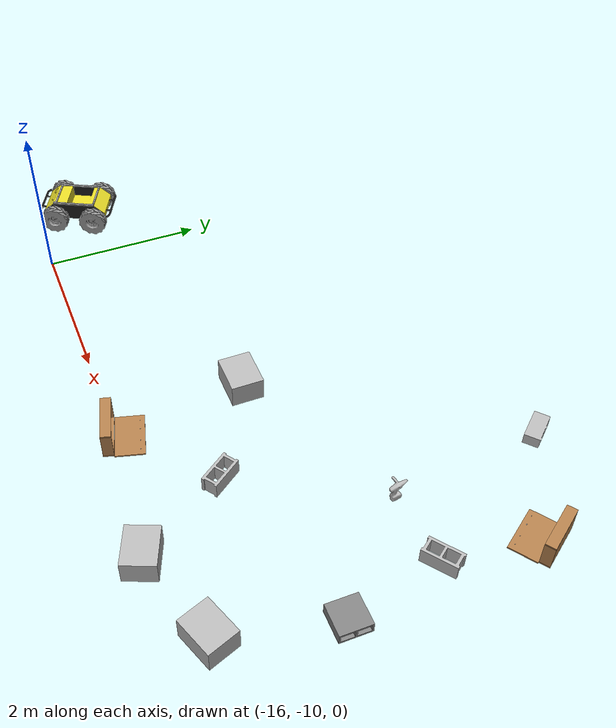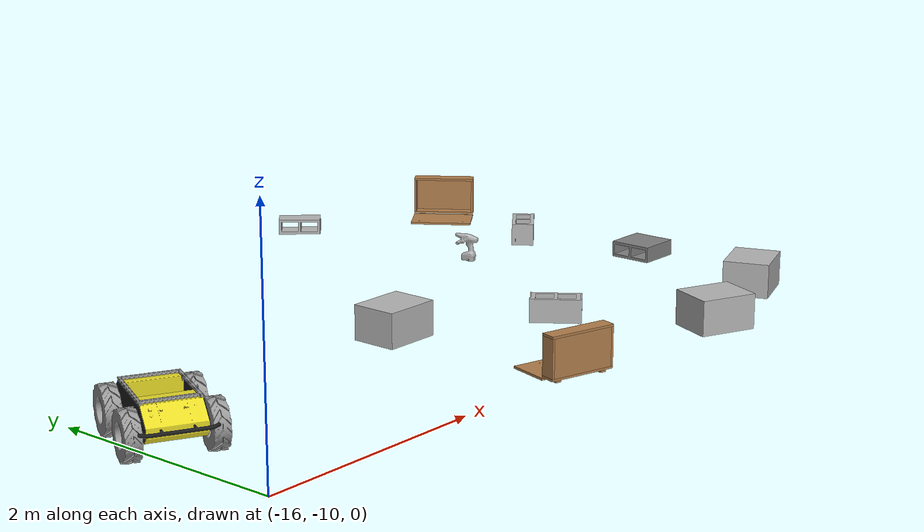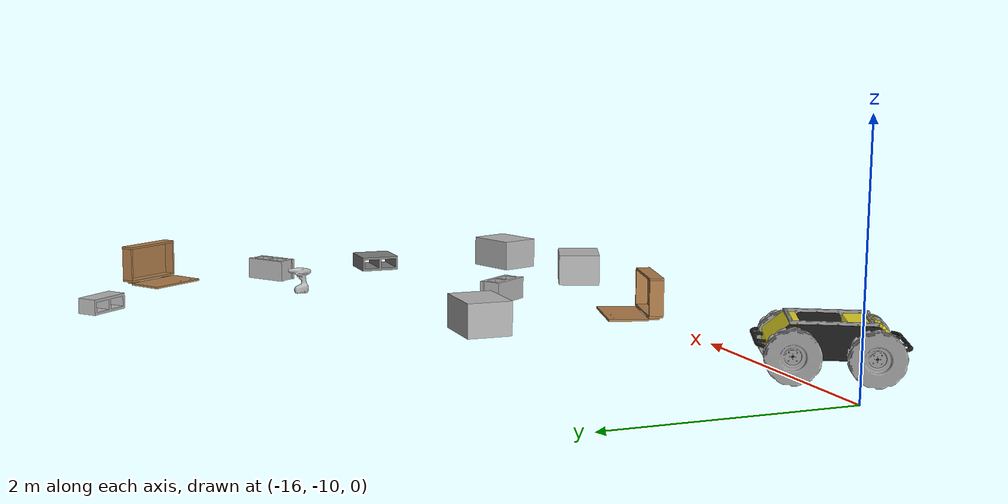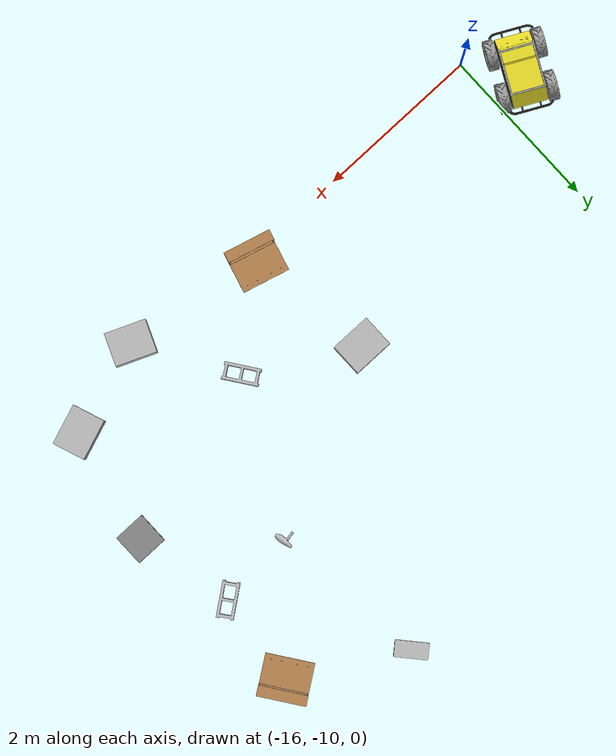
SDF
<?xml version='1.0'?>
<sdf version='1.6'>
  <model name='model'>
    <model name='cardboard_box'>
      <pose frame=''>-12.9488 -8.37571 0.15 0 -0 0</pose>
      <link name='link'>
        <inertial>
          <mass>2</mass>
          <inertia>
            <ixx>0.0416667</ixx>
            <ixy>0</ixy>
            <ixz>0</ixz>
            <iyy>0.0566667</iyy>
            <iyz>0</iyz>
            <izz>0.0683333</izz>
          </inertia>
        </inertial>
        <collision name='collision'>
          <geometry>
            <box>
              <size>0.5 0.4 0.3</size>
            </box>
          </geometry>
          <surface>
            <friction>
              <ode>
                <mu>1</mu>
                <mu2>1</mu2>
              </ode>
            </friction>
            <contact>
              <ode>
                <kp>1e+07</kp>
                <kd>1</kd>
                <min_depth>0.001</min_depth>
                <max_vel>0.1</max_vel>
              </ode>
            </contact>
          </surface>
        </collision>
        <visual name='visual'>
          <pose frame=''>0 0 -0.15 0 -0 0</pose>
          <geometry>
            <mesh>
              <uri>model://cardboard_box/meshes/cardboard_box.dae</uri>
              <scale>1.25932 1.00745 0.755591</scale>
            </mesh>
          </geometry>
        </visual>
      </link>
    </model>
    <model name='cardboard_box_0'>
      <pose frame=''>-9.89481 -9.83756 0.15 0 -0 0.347901</pose>
      <link name='link'>
        <inertial>
          <mass>2</mass>
          <inertia>
            <ixx>0.0416667</ixx>
            <ixy>0</ixy>
            <ixz>0</ixz>
            <iyy>0.0566667</iyy>
            <iyz>0</iyz>
            <izz>0.0683333</izz>
          </inertia>
        </inertial>
        <collision name='collision'>
          <geometry>
            <box>
              <size>0.5 0.4 0.3</size>
            </box>
          </geometry>
          <surface>
            <friction>
              <ode>
                <mu>1</mu>
                <mu2>1</mu2>
              </ode>
            </friction>
            <contact>
              <ode>
                <kp>1e+07</kp>
                <kd>1</kd>
                <min_depth>0.001</min_depth>
                <max_vel>0.1</max_vel>
              </ode>
            </contact>
          </surface>
        </collision>
        <visual name='visual'>
          <pose frame=''>0 0 -0.15 0 -0 0</pose>
          <geometry>
            <mesh>
              <uri>model://cardboard_box/meshes/cardboard_box.dae</uri>
              <scale>1.25932 1.00745 0.755591</scale>
            </mesh>
          </geometry>
        </visual>
      </link>
    </model>
    <model name='cardboard_box_1'>
      <pose frame=''>-11.0218 -10.1911 0.15 0 0 -0.396044</pose>
      <link name='link'>
        <inertial>
          <mass>2</mass>
          <inertia>
            <ixx>0.0416667</ixx>
            <ixy>0</ixy>
            <ixz>0</ixz>
            <iyy>0.0566667</iyy>
            <iyz>0</iyz>
            <izz>0.0683333</izz>
          </inertia>
        </inertial>
        <collision name='collision'>
          <geometry>
            <box>
              <size>0.5 0.4 0.3</size>
            </box>
          </geometry>
          <surface>
            <friction>
              <ode>
                <mu>1</mu>
                <mu2>1</mu2>
              </ode>
            </friction>
            <contact>
              <ode>
                <kp>1e+07</kp>
                <kd>1</kd>
                <min_depth>0.001</min_depth>
                <max_vel>0.1</max_vel>
              </ode>
            </contact>
          </surface>
        </collision>
        <visual name='visual'>
          <pose frame=''>0 0 -0.15 0 -0 0</pose>
          <geometry>
            <mesh>
              <uri>model://cardboard_box/meshes/cardboard_box.dae</uri>
              <scale>1.25932 1.00745 0.755591</scale>
            </mesh>
          </geometry>
        </visual>
      </link>
    </model>
    <model name='cinder_block'>
      <link name='link'>
        <inertial>
          <pose frame=''>0 0 0.1016 0 -0 0</pose>
          <mass>5</mass>
          <inertia>
            <ixx>0.028705</ixx>
            <ixy>0</ixy>
            <iyy>0.073708</iyy>
            <ixz>0</ixz>
            <iyz>0</iyz>
            <izz>0.06908</izz>
          </inertia>
        </inertial>
        <visual name='visual'>
          <geometry>
            <mesh>
              <uri>model://cinder_block/meshes/cinder_block.dae</uri>
            </mesh>
          </geometry>
        </visual>
        <collision name='left'>
          <pose frame=''>0 -0.08465 0.1016 0 -0 0</pose>
          <geometry>
            <box>
              <size>0.43495 0.0339 0.2032</size>
            </box>
          </geometry>
          <surface>
            <contact>
              <ode>
                <max_vel>0.1</max_vel>
                <min_depth>0.001</min_depth>
              </ode>
            </contact>
            <friction>
              <ode>
                <mu>1</mu>
                <mu2>1</mu2>
              </ode>
            </friction>
          </surface>
        </collision>
        <collision name='right'>
          <pose frame=''>0 0.08465 0.1016 0 -0 0</pose>
          <geometry>
            <box>
              <size>0.43495 0.0339 0.2032</size>
            </box>
          </geometry>
          <surface>
            <contact>
              <ode>
                <max_vel>0.1</max_vel>
                <min_depth>0.001</min_depth>
              </ode>
            </contact>
            <friction>
              <ode>
                <mu>1</mu>
                <mu2>1</mu2>
              </ode>
            </friction>
          </surface>
        </collision>
        <collision name='front'>
          <pose frame=''>0.18625 0 0.1016 0 -0 0</pose>
          <geometry>
            <box>
              <size>0.0339 0.1354 0.203</size>
            </box>
          </geometry>
          <surface>
            <contact>
              <ode>
                <max_vel>0.1</max_vel>
                <min_depth>0.001</min_depth>
              </ode>
            </contact>
            <friction>
              <ode>
                <mu>1</mu>
                <mu2>1</mu2>
              </ode>
            </friction>
          </surface>
        </collision>
        <collision name='middle'>
          <pose frame=''>0 0 0.1016 0 -0 0</pose>
          <geometry>
            <box>
              <size>0.0339 0.1354 0.203</size>
            </box>
          </geometry>
          <surface>
            <contact>
              <ode>
                <max_vel>0.1</max_vel>
                <min_depth>0.001</min_depth>
              </ode>
            </contact>
            <friction>
              <ode>
                <mu>1</mu>
                <mu2>1</mu2>
              </ode>
            </friction>
          </surface>
        </collision>
        <collision name='back'>
          <pose frame=''>-0.18625 0 0.1016 0 -0 0</pose>
          <geometry>
            <box>
              <size>0.0339 0.1354 0.203</size>
            </box>
          </geometry>
          <surface>
            <contact>
              <ode>
                <max_vel>0.1</max_vel>
                <min_depth>0.001</min_depth>
              </ode>
            </contact>
            <friction>
              <ode>
                <mu>1</mu>
                <mu2>1</mu2>
              </ode>
            </friction>
          </surface>
        </collision>
      </link>
      <pose frame=''>-11.7145 -9.07547 0 0 0 -0.951879</pose>
    </model>
    <model name='cinder_block_0'>
      <link name='link'>
        <inertial>
          <pose frame=''>0 0 0.1016 0 -0 0</pose>
          <mass>5</mass>
          <inertia>
            <ixx>0.028705</ixx>
            <ixy>0</ixy>
            <iyy>0.073708</iyy>
            <ixz>0</ixz>
            <iyz>0</iyz>
            <izz>0.06908</izz>
          </inertia>
        </inertial>
        <visual name='visual'>
          <geometry>
            <mesh>
              <uri>model://cinder_block/meshes/cinder_block.dae</uri>
            </mesh>
          </geometry>
        </visual>
        <collision name='left'>
          <pose frame=''>0 -0.08465 0.1016 0 -0 0</pose>
          <geometry>
            <box>
              <size>0.43495 0.0339 0.2032</size>
            </box>
          </geometry>
          <surface>
            <contact>
              <ode>
                <max_vel>0.1</max_vel>
                <min_depth>0.001</min_depth>
              </ode>
            </contact>
            <friction>
              <ode>
                <mu>1</mu>
                <mu2>1</mu2>
              </ode>
            </friction>
          </surface>
        </collision>
        <collision name='right'>
          <pose frame=''>0 0.08465 0.1016 0 -0 0</pose>
          <geometry>
            <box>
              <size>0.43495 0.0339 0.2032</size>
            </box>
          </geometry>
          <surface>
            <contact>
              <ode>
                <max_vel>0.1</max_vel>
                <min_depth>0.001</min_depth>
              </ode>
            </contact>
            <friction>
              <ode>
                <mu>1</mu>
                <mu2>1</mu2>
              </ode>
            </friction>
          </surface>
        </collision>
        <collision name='front'>
          <pose frame=''>0.18625 0 0.1016 0 -0 0</pose>
          <geometry>
            <box>
              <size>0.0339 0.1354 0.203</size>
            </box>
          </geometry>
          <surface>
            <contact>
              <ode>
                <max_vel>0.1</max_vel>
                <min_depth>0.001</min_depth>
              </ode>
            </contact>
            <friction>
              <ode>
                <mu>1</mu>
                <mu2>1</mu2>
              </ode>
            </friction>
          </surface>
        </collision>
        <collision name='middle'>
          <pose frame=''>0 0 0.1016 0 -0 0</pose>
          <geometry>
            <box>
              <size>0.0339 0.1354 0.203</size>
            </box>
          </geometry>
          <surface>
            <contact>
              <ode>
                <max_vel>0.1</max_vel>
                <min_depth>0.001</min_depth>
              </ode>
            </contact>
            <friction>
              <ode>
                <mu>1</mu>
                <mu2>1</mu2>
              </ode>
            </friction>
          </surface>
        </collision>
        <collision name='back'>
          <pose frame=''>-0.18625 0 0.1016 0 -0 0</pose>
          <geometry>
            <box>
              <size>0.0339 0.1354 0.203</size>
            </box>
          </geometry>
          <surface>
            <contact>
              <ode>
                <max_vel>0.1</max_vel>
                <min_depth>0.001</min_depth>
              </ode>
            </contact>
            <friction>
              <ode>
                <mu>1</mu>
                <mu2>1</mu2>
              </ode>
            </friction>
          </surface>
        </collision>
      </link>
      <pose frame=''>-9.8513 -7.27167 0 0 -0 0.643801</pose>
    </model>
    <model name='cinder_block_2'>
      <link name='link'>
        <inertial>
          <pose frame=''>0 0 0.071438 0 -0 0</pose>
          <mass>5</mass>
          <inertia>
            <ixx>0.06908</ixx>
            <ixy>0</ixy>
            <iyy>0.028705</iyy>
            <ixz>0</ixz>
            <iyz>0</iyz>
            <izz>0.073708</izz>
          </inertia>
        </inertial>
        <visual name='visual'>
          <geometry>
            <mesh>
              <uri>model://cinder_block_2/meshes/cinder_block.dae</uri>
            </mesh>
          </geometry>
        </visual>
        <collision name='top'>
          <pose frame=''>0 0 0.130175 0 -0 0</pose>
          <geometry>
            <box>
              <size>0.19368 0.396875 0.0254</size>
            </box>
          </geometry>
          <surface>
            <contact>
              <ode>
                <max_vel>0.1</max_vel>
                <min_depth>0.001</min_depth>
              </ode>
            </contact>
            <friction>
              <ode>
                <mu>1</mu>
                <mu2>1</mu2>
              </ode>
            </friction>
          </surface>
        </collision>
        <collision name='bottom'>
          <pose frame=''>0 0 0.0127 0 -0 0</pose>
          <geometry>
            <box>
              <size>0.19368 0.396875 0.0254</size>
            </box>
          </geometry>
          <surface>
            <contact>
              <ode>
                <max_vel>0.1</max_vel>
                <min_depth>0.001</min_depth>
              </ode>
            </contact>
            <friction>
              <ode>
                <mu>1</mu>
                <mu2>1</mu2>
              </ode>
            </friction>
          </surface>
        </collision>
        <collision name='left'>
          <pose frame=''>0 -0.185738 0.071438 0 -0 0</pose>
          <geometry>
            <box>
              <size>0.19368 0.0254 0.092075</size>
            </box>
          </geometry>
          <surface>
            <contact>
              <ode>
                <max_vel>0.1</max_vel>
                <min_depth>0.001</min_depth>
              </ode>
            </contact>
            <friction>
              <ode>
                <mu>1</mu>
                <mu2>1</mu2>
              </ode>
            </friction>
          </surface>
        </collision>
        <collision name='right'>
          <pose frame=''>0 0.185738 0.071438 0 -0 0</pose>
          <geometry>
            <box>
              <size>0.19368 0.0254 0.092075</size>
            </box>
          </geometry>
          <surface>
            <contact>
              <ode>
                <max_vel>0.1</max_vel>
                <min_depth>0.001</min_depth>
              </ode>
            </contact>
            <friction>
              <ode>
                <mu>1</mu>
                <mu2>1</mu2>
              </ode>
            </friction>
          </surface>
        </collision>
        <collision name='middle'>
          <pose frame=''>0 0 0.071438 0 -0 0</pose>
          <geometry>
            <box>
              <size>0.19368 0.0254 0.092075</size>
            </box>
          </geometry>
          <surface>
            <contact>
              <ode>
                <max_vel>0.1</max_vel>
                <min_depth>0.001</min_depth>
              </ode>
            </contact>
            <friction>
              <ode>
                <mu>1</mu>
                <mu2>1</mu2>
              </ode>
            </friction>
          </surface>
        </collision>
      </link>
      <pose frame=''>-11.0101 -5.432 0 0 -0 0.722831</pose>
    </model>
    <model name='cinder_block_wide'>
      <link name='link'>
        <inertial>
          <pose frame=''>0 0 0.071438 0 -0 0</pose>
          <mass>5</mass>
          <inertia>
            <ixx>0.0681466</ixx>
            <ixy>0</ixy>
            <iyy>0.0681466</iyy>
            <ixz>0</ixz>
            <iyz>0</iyz>
            <izz>0.124808</izz>
          </inertia>
        </inertial>
        <visual name='visual'>
          <geometry>
            <mesh>
              <uri>model://cinder_block_wide/meshes/cinder_block_wide.dae</uri>
            </mesh>
          </geometry>
        </visual>
        <collision name='top'>
          <pose frame=''>0 0 0.130175 0 -0 0</pose>
          <geometry>
            <box>
              <size>0.387354 0.387354 0.0254</size>
            </box>
          </geometry>
          <surface>
            <contact>
              <ode>
                <max_vel>0.1</max_vel>
                <min_depth>0.001</min_depth>
              </ode>
            </contact>
            <friction>
              <ode>
                <mu>1</mu>
                <mu2>1</mu2>
              </ode>
            </friction>
          </surface>
        </collision>
        <collision name='bottom'>
          <pose frame=''>0 0 0.0127 0 -0 0</pose>
          <geometry>
            <box>
              <size>0.387354 0.387354 0.0254</size>
            </box>
          </geometry>
          <surface>
            <contact>
              <ode>
                <max_vel>0.1</max_vel>
                <min_depth>0.001</min_depth>
              </ode>
            </contact>
            <friction>
              <ode>
                <mu>1</mu>
                <mu2>1</mu2>
              </ode>
            </friction>
          </surface>
        </collision>
        <collision name='left'>
          <pose frame=''>0 -0.183355 0.071438 0 -0 0</pose>
          <geometry>
            <box>
              <size>0.387354 0.020643 0.092075</size>
            </box>
          </geometry>
          <surface>
            <contact>
              <ode>
                <max_vel>0.1</max_vel>
                <min_depth>0.001</min_depth>
              </ode>
            </contact>
            <friction>
              <ode>
                <mu>1</mu>
                <mu2>1</mu2>
              </ode>
            </friction>
          </surface>
        </collision>
        <collision name='right'>
          <pose frame=''>0 0.183355 0.071438 0 -0 0</pose>
          <geometry>
            <box>
              <size>0.387354 0.020643 0.092075</size>
            </box>
          </geometry>
          <surface>
            <contact>
              <ode>
                <max_vel>0.1</max_vel>
                <min_depth>0.001</min_depth>
              </ode>
            </contact>
            <friction>
              <ode>
                <mu>1</mu>
                <mu2>1</mu2>
              </ode>
            </friction>
          </surface>
        </collision>
        <collision name='middle'>
          <pose frame=''>0 0 0.071438 0 -0 0</pose>
          <geometry>
            <box>
              <size>0.387354 0.0254 0.092075</size>
            </box>
          </geometry>
          <surface>
            <contact>
              <ode>
                <max_vel>0.1</max_vel>
                <min_depth>0.001</min_depth>
              </ode>
            </contact>
            <friction>
              <ode>
                <mu>1</mu>
                <mu2>1</mu2>
              </ode>
            </friction>
          </surface>
        </collision>
      </link>
      <pose frame=''>-9.58358 -8.46517 0 0 -0 0</pose>
    </model>
    <model name='drill'>
      <link name='link'>
        <inertial>
          <pose frame=''>-0.00637 -0.008 0.13254 0 -0 0</pose>
          <inertia>
            <ixx>0.0133113</ixx>
            <ixy>-0.00030365</ixy>
            <ixz>-0.00034148</ixz>
            <iyy>0.0115766</iyy>
            <iyz>0.00088073</iyz>
            <izz>0.00378028</izz>
          </inertia>
          <mass>1.50252</mass>
        </inertial>
        <collision name='collision'>
          <pose frame=''>0 0 -0.09 0 -0 0</pose>
          <geometry>
            <mesh>
              <uri>model://cordless_drill/meshes/cordless_drill.stl</uri>
            </mesh>
          </geometry>
          <surface>
            <contact>
              <ode>
                <max_vel>0.1</max_vel>
                <min_depth>0.001</min_depth>
              </ode>
            </contact>
          </surface>
        </collision>
        <visual name='visual'>
          <pose frame=''>0 0 -0.09 0 -0 0</pose>
          <geometry>
            <mesh>
              <uri>model://cordless_drill/meshes/cordless_drill.dae</uri>
            </mesh>
          </geometry>
        </visual>
      </link>
      <pose frame=''>-10.774 -7.34808 0 0 -0 0.159102</pose>
    </model>
    <model name='husky'>
      <pose frame=''>-16.3976 -9.44894 0.5 0 -0 1.09834</pose>
      <link name='base_link'>
        <collision name='collision'>
          <pose frame=''>0 0 0.1 0 -0 0</pose>
          <geometry>
            <box>
              <size>1.0074 0.5709 0.2675</size>
            </box>
          </geometry>
        </collision>
        <inertial>
          <mass>33.855</mass>
          <pose frame=''>-0.085613 -0.00084 0.238145 0 -0 0</pose>
          <inertia>
            <ixx>2.2343</ixx>
            <ixy>-0.023642</ixy>
            <ixz>0.275174</ixz>
            <iyy>3.42518</iyy>
            <iyz>0.00239624</iyz>
            <izz>2.1241</izz>
          </inertia>
        </inertial>
        <visual name='base'>
          <pose frame=''>0 0 0 0 -0 0</pose>
          <geometry>
            <mesh>
              <uri>model://husky/meshes/base_link.stl</uri>
            </mesh>
          </geometry>
          <material>
            <script>
              <name>Gazebo/FlatBlack</name>
              <uri>__default__</uri>
            </script>
          </material>
        </visual>
        <visual name='top_plate'>
          <pose frame=''>0 0 0 0 -0 0</pose>
          <geometry>
            <mesh>
              <uri>model://husky/meshes/top_plate.stl</uri>
            </mesh>
          </geometry>
          <material>
            <script>
              <name>Gazebo/Yellow</name>
              <uri>__default__</uri>
            </script>
          </material>
        </visual>
        <visual name='front_bumper'>
          <pose frame=''>0.47 0 0.091 0 -0 0</pose>
          <geometry>
            <mesh>
              <uri>model://husky/meshes/bumper.stl</uri>
            </mesh>
          </geometry>
          <material>
            <script>
              <name>Gazebo/FlatBlack</name>
              <uri>__default__</uri>
            </script>
          </material>
        </visual>
        <visual name='rear_bumper'>
          <pose frame=''>-0.47 0 0.091 0 -0 3.141</pose>
          <geometry>
            <mesh>
              <uri>model://husky/meshes/bumper.stl</uri>
            </mesh>
          </geometry>
          <material>
            <script>
              <name>Gazebo/FlatBlack</name>
              <uri>__default__</uri>
            </script>
          </material>
        </visual>
        <visual name='user_rail'>
          <pose frame=''>0.272 0 0.245 0 -0 0</pose>
          <geometry>
            <mesh>
              <uri>model://husky/meshes/user_rail.stl</uri>
            </mesh>
          </geometry>
          <material>
            <script>
              <name>Gazebo/Grey</name>
              <uri>__default__</uri>
            </script>
          </material>
        </visual>
      </link>
      <link name='back_left_wheel'>
        <pose frame=''>-0.256 0.285475 0.035 0 -0 0</pose>
        <inertial>
          <mass>2.6357</mass>
          <pose frame=''>0 0 0 0 -0 0</pose>
          <inertia>
            <ixx>0.0246688</ixx>
            <ixy>0</ixy>
            <ixz>0</ixz>
            <iyy>0.0246688</iyy>
            <iyz>0</iyz>
            <izz>0.0441058</izz>
          </inertia>
        </inertial>
        <collision name='back_left_wheel_collision'>
          <pose frame=''>0 0 0 -1.5707 0 0</pose>
          <geometry>
            <cylinder>
              <radius>0.17775</radius>
              <length>0.1143</length>
            </cylinder>
          </geometry>
          <surface>
            <friction>
              <ode>
                <mu>100000</mu>
                <mu2>100000</mu2>
                <slip1>0</slip1>
                <slip2>0</slip2>
              </ode>
            </friction>
          </surface>
        </collision>
        <visual name='back_left_wheel'>
          <pose frame=''>0 0 0 -3.14159 0 0</pose>
          <geometry>
            <mesh>
              <uri>model://husky/meshes/wheel.stl</uri>
            </mesh>
          </geometry>
          <material>
            <script>
              <name>Gazebo/Grey</name>
              <uri>__default__</uri>
            </script>
          </material>
        </visual>
      </link>
      <joint name='back_left_joint' type='revolute'>
        <parent>base_link</parent>
        <child>back_left_wheel</child>
        <axis>
          <xyz>0 1 0</xyz>
          <use_parent_model_frame>1</use_parent_model_frame>
          <limit>
            <lower>-1e+16</lower>
            <upper>1e+16</upper>
          </limit>
        </axis>
        <physics>
          <ode>
            <limit>
              <cfm>0</cfm>
              <erp>0.9</erp>
            </limit>
          </ode>
        </physics>
      </joint>
      <link name='back_right_wheel'>
        <pose frame=''>-0.256 -0.285475 0.035 0 -0 0</pose>
        <inertial>
          <mass>2.6357</mass>
          <pose frame=''>0 0 0 0 -0 0</pose>
          <inertia>
            <ixx>0.0246688</ixx>
            <ixy>0</ixy>
            <ixz>0</ixz>
            <iyy>0.0246688</iyy>
            <iyz>0</iyz>
            <izz>0.0441058</izz>
          </inertia>
        </inertial>
        <collision name='back_right_wheel_collision'>
          <pose frame=''>0 0 0 -1.5707 0 0</pose>
          <geometry>
            <cylinder>
              <radius>0.17775</radius>
              <length>0.1143</length>
            </cylinder>
          </geometry>
          <surface>
            <friction>
              <ode>
                <mu>100000</mu>
                <mu2>100000</mu2>
                <slip1>0</slip1>
                <slip2>0</slip2>
              </ode>
            </friction>
          </surface>
        </collision>
        <visual name='back_right_wheel'>
          <pose frame=''>0 0 0 -3.14159 0 0</pose>
          <geometry>
            <mesh>
              <uri>model://husky/meshes/wheel.stl</uri>
            </mesh>
          </geometry>
          <material>
            <script>
              <name>Gazebo/Grey</name>
              <uri>__default__</uri>
            </script>
          </material>
        </visual>
      </link>
      <joint name='back_right_joint' type='revolute'>
        <parent>base_link</parent>
        <child>back_right_wheel</child>
        <axis>
          <xyz>0 1 0</xyz>
          <use_parent_model_frame>1</use_parent_model_frame>
          <limit>
            <lower>-1e+16</lower>
            <upper>1e+16</upper>
          </limit>
        </axis>
        <physics>
          <ode>
            <limit>
              <cfm>0</cfm>
              <erp>0.9</erp>
            </limit>
          </ode>
        </physics>
      </joint>
      <link name='front_left_wheel'>
        <pose frame=''>0.256 0.285475 0.035 0 -0 0</pose>
        <inertial>
          <mass>2.6357</mass>
          <pose frame=''>0 0 0 0 -0 0</pose>
          <inertia>
            <ixx>0.0246688</ixx>
            <ixy>0</ixy>
            <ixz>0</ixz>
            <iyy>0.0246688</iyy>
            <iyz>0</iyz>
            <izz>0.0441058</izz>
          </inertia>
        </inertial>
        <collision name='front_left_wheel_collision'>
          <pose frame=''>0 0 0 -1.5707 0 0</pose>
          <geometry>
            <cylinder>
              <radius>0.17775</radius>
              <length>0.1143</length>
            </cylinder>
          </geometry>
          <surface>
            <friction>
              <ode>
                <mu>100000</mu>
                <mu2>100000</mu2>
                <slip1>0</slip1>
                <slip2>0</slip2>
              </ode>
            </friction>
          </surface>
        </collision>
        <visual name='front_left_wheel'>
          <pose frame=''>0 0 0 -3.14159 0 0</pose>
          <geometry>
            <mesh>
              <uri>model://husky/meshes/wheel.stl</uri>
            </mesh>
          </geometry>
          <material>
            <script>
              <name>Gazebo/Grey</name>
              <uri>__default__</uri>
            </script>
          </material>
        </visual>
      </link>
      <joint name='front_left_joint' type='revolute'>
        <parent>base_link</parent>
        <child>front_left_wheel</child>
        <axis>
          <xyz>0 1 0</xyz>
          <use_parent_model_frame>1</use_parent_model_frame>
          <limit>
            <lower>-1e+16</lower>
            <upper>1e+16</upper>
          </limit>
        </axis>
        <physics>
          <ode>
            <limit>
              <cfm>0</cfm>
              <erp>0.9</erp>
            </limit>
          </ode>
        </physics>
      </joint>
      <link name='front_right_wheel'>
        <pose frame=''>0.256 -0.285475 0.035 0 -0 0</pose>
        <inertial>
          <mass>2.6357</mass>
          <pose frame=''>0 0 0 0 -0 0</pose>
          <inertia>
            <ixx>0.0246688</ixx>
            <ixy>0</ixy>
            <ixz>0</ixz>
            <iyy>0.0246688</iyy>
            <iyz>0</iyz>
            <izz>0.0441058</izz>
          </inertia>
        </inertial>
        <collision name='front_right_wheel_collision'>
          <pose frame=''>0 0 0 -1.5707 0 0</pose>
          <geometry>
            <cylinder>
              <radius>0.17775</radius>
              <length>0.1143</length>
            </cylinder>
          </geometry>
          <surface>
            <friction>
              <ode>
                <mu>100000</mu>
                <mu2>100000</mu2>
                <slip1>0</slip1>
                <slip2>0</slip2>
              </ode>
            </friction>
          </surface>
        </collision>
        <visual name='front_right_wheel'>
          <pose frame=''>0 0 0 -3.14159 0 0</pose>
          <geometry>
            <mesh>
              <uri>model://husky/meshes/wheel.stl</uri>
            </mesh>
          </geometry>
          <material>
            <script>
              <name>Gazebo/Grey</name>
              <uri>__default__</uri>
            </script>
          </material>
        </visual>
      </link>
      <joint name='front_right_joint' type='revolute'>
        <parent>base_link</parent>
        <child>front_right_wheel</child>
        <axis>
          <xyz>0 1 0</xyz>
          <use_parent_model_frame>1</use_parent_model_frame>
          <limit>
            <lower>-1e+16</lower>
            <upper>1e+16</upper>
          </limit>
        </axis>
        <physics>
          <ode>
            <limit>
              <cfm>0</cfm>
              <erp>0.9</erp>
            </limit>
          </ode>
        </physics>
      </joint>
      <plugin name='husky_diff_controller' filename='libhusky_gazebo_plugins.so'>
        <alwaysOn>1</alwaysOn>
        <updateRate>100.0</updateRate>
        <backLeftJoint>back_left_joint</backLeftJoint>
        <backRightJoint>back_right_joint</backRightJoint>
        <frontLeftJoint>front_left_joint</frontLeftJoint>
        <frontRightJoint>front_right_joint</frontRightJoint>
        <wheelSeparation>0.5709</wheelSeparation>
        <wheelDiameter>0.3555</wheelDiameter>
        <torque>35</torque>
      </plugin>
    </model>
    <model name='wooden_case'>
      <link name='base'>
        <pose frame=''>0 0 0.024 0 -0 0</pose>
        <inertial>
          <pose frame=''>-0.022184 0 0.171592 0 -0 0</pose>
          <mass>3.96264</mass>
          <inertia>
            <ixx>0.213536</ixx>
            <ixy>0</ixy>
            <ixz>0.000779377</ixz>
            <iyy>0.0708943</iyy>
            <iyz>0</iyz>
            <izz>0.154604</izz>
          </inertia>
        </inertial>
        <collision name='collision_back'>
          <pose frame=''>-0.053975 0 0.1778 0 -0 0</pose>
          <geometry>
            <box>
              <size>0.01905 0.5461 0.3175</size>
            </box>
          </geometry>
          <surface>
            <contact>
              <poissons_ratio>0.347</poissons_ratio>
              <elastic_modulus>8.8e+09</elastic_modulus>
              <ode>
                <kp>100000</kp>
                <kd>100</kd>
                <max_vel>100</max_vel>
                <min_depth>0.001</min_depth>
              </ode>
            </contact>
            <friction>
              <torsional>
                <coefficient>1</coefficient>
                <use_patch_radius>0</use_patch_radius>
                <surface_radius>0.01</surface_radius>
              </torsional>
            </friction>
          </surface>
        </collision>
        <visual name='visual_back'>
          <pose frame=''>-0.053975 0 0.1778 0 -0 0</pose>
          <geometry>
            <box>
              <size>0.01905 0.5461 0.3175</size>
            </box>
          </geometry>
          <material>
            <script>
              <uri>file://media/materials/scripts/gazebo.material</uri>
              <name>Gazebo/Wood</name>
            </script>
          </material>
        </visual>
        <collision name='collision_bottom'>
          <pose frame=''>0 0 0.009525 0 -0 0</pose>
          <geometry>
            <box>
              <size>0.127 0.5842 0.01905</size>
            </box>
          </geometry>
          <surface>
            <contact>
              <poissons_ratio>0.347</poissons_ratio>
              <elastic_modulus>8.8e+09</elastic_modulus>
              <ode>
                <kp>100000</kp>
                <kd>100</kd>
                <max_vel>100</max_vel>
                <min_depth>0.001</min_depth>
              </ode>
            </contact>
            <friction>
              <torsional>
                <coefficient>1</coefficient>
                <use_patch_radius>0</use_patch_radius>
                <surface_radius>0.01</surface_radius>
              </torsional>
            </friction>
          </surface>
        </collision>
        <visual name='visual_bottom'>
          <pose frame=''>0 0 0.009525 0 -0 0</pose>
          <geometry>
            <box>
              <size>0.127 0.5842 0.01905</size>
            </box>
          </geometry>
          <material>
            <script>
              <uri>file://media/materials/scripts/gazebo.material</uri>
              <name>Gazebo/Wood</name>
            </script>
          </material>
        </visual>
        <collision name='collision_top'>
          <pose frame=''>0 0 0.346075 0 -0 0</pose>
          <geometry>
            <box>
              <size>0.127 0.5842 0.01905</size>
            </box>
          </geometry>
          <surface>
            <contact>
              <poissons_ratio>0.347</poissons_ratio>
              <elastic_modulus>8.8e+09</elastic_modulus>
              <ode>
                <kp>100000</kp>
                <kd>100</kd>
                <max_vel>100</max_vel>
                <min_depth>0.001</min_depth>
              </ode>
            </contact>
            <friction>
              <torsional>
                <coefficient>1</coefficient>
                <use_patch_radius>0</use_patch_radius>
                <surface_radius>0.01</surface_radius>
              </torsional>
            </friction>
          </surface>
        </collision>
        <visual name='visual_top'>
          <pose frame=''>0 0 0.346075 0 -0 0</pose>
          <geometry>
            <box>
              <size>0.127 0.5842 0.01905</size>
            </box>
          </geometry>
          <material>
            <script>
              <uri>file://media/materials/scripts/gazebo.material</uri>
              <name>Gazebo/Wood</name>
            </script>
          </material>
        </visual>
        <collision name='collision_left'>
          <pose frame=''>0 -0.282575 0.1778 0 -0 0</pose>
          <geometry>
            <box>
              <size>0.127 0.01905 0.3175</size>
            </box>
          </geometry>
          <surface>
            <contact>
              <poissons_ratio>0.347</poissons_ratio>
              <elastic_modulus>8.8e+09</elastic_modulus>
              <ode>
                <kp>100000</kp>
                <kd>100</kd>
                <max_vel>100</max_vel>
                <min_depth>0.001</min_depth>
              </ode>
            </contact>
            <friction>
              <torsional>
                <coefficient>1</coefficient>
                <use_patch_radius>0</use_patch_radius>
                <surface_radius>0.01</surface_radius>
              </torsional>
            </friction>
          </surface>
        </collision>
        <visual name='visual_left'>
          <pose frame=''>0 -0.282575 0.1778 0 -0 0</pose>
          <geometry>
            <box>
              <size>0.127 0.01905 0.3175</size>
            </box>
          </geometry>
          <material>
            <script>
              <uri>file://media/materials/scripts/gazebo.material</uri>
              <name>Gazebo/Wood</name>
            </script>
          </material>
        </visual>
        <collision name='collision_right'>
          <pose frame=''>0 0.282575 0.1778 0 -0 0</pose>
          <geometry>
            <box>
              <size>0.127 0.01905 0.3175</size>
            </box>
          </geometry>
          <surface>
            <contact>
              <poissons_ratio>0.347</poissons_ratio>
              <elastic_modulus>8.8e+09</elastic_modulus>
              <ode>
                <kp>100000</kp>
                <kd>100</kd>
                <max_vel>100</max_vel>
                <min_depth>0.001</min_depth>
              </ode>
            </contact>
            <friction>
              <torsional>
                <coefficient>1</coefficient>
                <use_patch_radius>0</use_patch_radius>
                <surface_radius>0.01</surface_radius>
              </torsional>
            </friction>
          </surface>
        </collision>
        <visual name='visual_right'>
          <pose frame=''>0 0.282575 0.1778 0 -0 0</pose>
          <geometry>
            <box>
              <size>0.127 0.01905 0.3175</size>
            </box>
          </geometry>
          <material>
            <script>
              <uri>file://media/materials/scripts/gazebo.material</uri>
              <name>Gazebo/Wood</name>
            </script>
          </material>
        </visual>
        <collision name='collision_block_left'>
          <pose frame=''>0.0095 -0.2151 -0.012 0 -0 0</pose>
          <geometry>
            <box>
              <size>0.108 0.05 0.024</size>
            </box>
          </geometry>
          <surface>
            <contact>
              <poissons_ratio>0.347</poissons_ratio>
              <elastic_modulus>8.8e+09</elastic_modulus>
              <ode>
                <kp>100000</kp>
                <kd>100</kd>
                <max_vel>100</max_vel>
                <min_depth>0.001</min_depth>
              </ode>
            </contact>
            <friction>
              <torsional>
                <coefficient>1</coefficient>
                <use_patch_radius>0</use_patch_radius>
                <surface_radius>0.01</surface_radius>
              </torsional>
            </friction>
          </surface>
        </collision>
        <visual name='visual_block_left'>
          <pose frame=''>0.0095 -0.2151 -0.012 0 -0 0</pose>
          <geometry>
            <box>
              <size>0.108 0.05 0.024</size>
            </box>
          </geometry>
          <material>
            <script>
              <uri>file://media/materials/scripts/gazebo.material</uri>
              <name>Gazebo/Wood</name>
            </script>
          </material>
        </visual>
        <collision name='collision_block_right'>
          <pose frame=''>0.0095 0.2151 -0.012 0 -0 0</pose>
          <geometry>
            <box>
              <size>0.108 0.05 0.024</size>
            </box>
          </geometry>
          <surface>
            <contact>
              <poissons_ratio>0.347</poissons_ratio>
              <elastic_modulus>8.8e+09</elastic_modulus>
              <ode>
                <kp>100000</kp>
                <kd>100</kd>
                <max_vel>100</max_vel>
                <min_depth>0.001</min_depth>
              </ode>
            </contact>
            <friction>
              <torsional>
                <coefficient>1</coefficient>
                <use_patch_radius>0</use_patch_radius>
                <surface_radius>0.01</surface_radius>
              </torsional>
            </friction>
          </surface>
        </collision>
        <visual name='visual_block_right'>
          <pose frame=''>0.0095 0.2151 -0.012 0 -0 0</pose>
          <geometry>
            <box>
              <size>0.108 0.05 0.024</size>
            </box>
          </geometry>
          <material>
            <script>
              <uri>file://media/materials/scripts/gazebo.material</uri>
              <name>Gazebo/Wood</name>
            </script>
          </material>
        </visual>
      </link>
      <link name='lid'>
        <pose frame=''>0.243775 0 0.009525 0 -0 0</pose>
        <inertial>
          <mass>1.97874</mass>
          <inertia>
            <ixx>0.0563367</ixx>
            <ixy>0</ixy>
            <ixz>0</ixz>
            <iyy>0.020911</iyy>
            <iyz>0</iyz>
            <izz>0.0771281</izz>
          </inertia>
        </inertial>
        <collision name='collision'>
          <geometry>
            <box>
              <size>0.3556 0.5842 0.01905</size>
            </box>
          </geometry>
          <surface>
            <contact>
              <poissons_ratio>0.347</poissons_ratio>
              <elastic_modulus>8.8e+09</elastic_modulus>
              <ode>
                <kp>100000</kp>
                <kd>100</kd>
                <max_vel>100</max_vel>
                <min_depth>0.001</min_depth>
              </ode>
            </contact>
            <friction>
              <torsional>
                <coefficient>1</coefficient>
                <use_patch_radius>0</use_patch_radius>
                <surface_radius>0.01</surface_radius>
              </torsional>
            </friction>
          </surface>
        </collision>
        <visual name='visual'>
          <geometry>
            <box>
              <size>0.3556 0.5842 0.01905</size>
            </box>
          </geometry>
          <material>
            <script>
              <uri>file://media/materials/scripts/gazebo.material</uri>
              <name>Gazebo/Wood</name>
            </script>
          </material>
        </visual>
        <visual name='tee_nut_1'>
          <pose frame=''>0.122 -0.216 0 0 -0 0</pose>
          <geometry>
            <cylinder>
              <radius>0.00635</radius>
              <length>0.0192405</length>
            </cylinder>
          </geometry>
          <material>
            <script>
              <uri>file://media/materials/scripts/gazebo.material</uri>
              <name>Gazebo/Grey</name>
            </script>
          </material>
        </visual>
        <visual name='tee_nut_2'>
          <pose frame=''>0.122 -0.088 0 0 -0 0</pose>
          <geometry>
            <cylinder>
              <radius>0.00635</radius>
              <length>0.0192405</length>
            </cylinder>
          </geometry>
          <material>
            <script>
              <uri>file://media/materials/scripts/gazebo.material</uri>
              <name>Gazebo/Grey</name>
            </script>
          </material>
        </visual>
        <visual name='tee_nut_3'>
          <pose frame=''>0.122 0.088 0 0 -0 0</pose>
          <geometry>
            <cylinder>
              <radius>0.00635</radius>
              <length>0.0192405</length>
            </cylinder>
          </geometry>
          <material>
            <script>
              <uri>file://media/materials/scripts/gazebo.material</uri>
              <name>Gazebo/Grey</name>
            </script>
          </material>
        </visual>
        <visual name='tee_nut_4'>
          <pose frame=''>0.122 0.216 0 0 -0 0</pose>
          <geometry>
            <cylinder>
              <radius>0.00635</radius>
              <length>0.0192405</length>
            </cylinder>
          </geometry>
          <material>
            <script>
              <uri>file://media/materials/scripts/gazebo.material</uri>
              <name>Gazebo/Grey</name>
            </script>
          </material>
        </visual>
      </link>
      <joint name='lid_hinge' type='revolute'>
        <pose frame=''>-0.1778 0 0.01905 0 -0 0</pose>
        <parent>base</parent>
        <child>lid</child>
        <axis>
          <xyz>0 1 0</xyz>
          <limit>
            <upper>0.523599</upper>
            <lower>-1.5708</lower>
          </limit>
          <use_parent_model_frame>0</use_parent_model_frame>
        </axis>
      </joint>
      <pose frame=''>-9.58086 -6.05662 0 0 0 -2.52661</pose>
    </model>
    <model name='wooden_case_0'>
      <link name='base'>
        <pose frame=''>0 0 0.024 0 -0 0</pose>
        <inertial>
          <pose frame=''>-0.022184 0 0.171592 0 -0 0</pose>
          <mass>3.96264</mass>
          <inertia>
            <ixx>0.213536</ixx>
            <ixy>0</ixy>
            <ixz>0.000779377</ixz>
            <iyy>0.0708943</iyy>
            <iyz>0</iyz>
            <izz>0.154604</izz>
          </inertia>
        </inertial>
        <collision name='collision_back'>
          <pose frame=''>-0.053975 0 0.1778 0 -0 0</pose>
          <geometry>
            <box>
              <size>0.01905 0.5461 0.3175</size>
            </box>
          </geometry>
          <surface>
            <contact>
              <poissons_ratio>0.347</poissons_ratio>
              <elastic_modulus>8.8e+09</elastic_modulus>
              <ode>
                <kp>100000</kp>
                <kd>100</kd>
                <max_vel>100</max_vel>
                <min_depth>0.001</min_depth>
              </ode>
            </contact>
            <friction>
              <torsional>
                <coefficient>1</coefficient>
                <use_patch_radius>0</use_patch_radius>
                <surface_radius>0.01</surface_radius>
              </torsional>
            </friction>
          </surface>
        </collision>
        <visual name='visual_back'>
          <pose frame=''>-0.053975 0 0.1778 0 -0 0</pose>
          <geometry>
            <box>
              <size>0.01905 0.5461 0.3175</size>
            </box>
          </geometry>
          <material>
            <script>
              <uri>file://media/materials/scripts/gazebo.material</uri>
              <name>Gazebo/Wood</name>
            </script>
          </material>
        </visual>
        <collision name='collision_bottom'>
          <pose frame=''>0 0 0.009525 0 -0 0</pose>
          <geometry>
            <box>
              <size>0.127 0.5842 0.01905</size>
            </box>
          </geometry>
          <surface>
            <contact>
              <poissons_ratio>0.347</poissons_ratio>
              <elastic_modulus>8.8e+09</elastic_modulus>
              <ode>
                <kp>100000</kp>
                <kd>100</kd>
                <max_vel>100</max_vel>
                <min_depth>0.001</min_depth>
              </ode>
            </contact>
            <friction>
              <torsional>
                <coefficient>1</coefficient>
                <use_patch_radius>0</use_patch_radius>
                <surface_radius>0.01</surface_radius>
              </torsional>
            </friction>
          </surface>
        </collision>
        <visual name='visual_bottom'>
          <pose frame=''>0 0 0.009525 0 -0 0</pose>
          <geometry>
            <box>
              <size>0.127 0.5842 0.01905</size>
            </box>
          </geometry>
          <material>
            <script>
              <uri>file://media/materials/scripts/gazebo.material</uri>
              <name>Gazebo/Wood</name>
            </script>
          </material>
        </visual>
        <collision name='collision_top'>
          <pose frame=''>0 0 0.346075 0 -0 0</pose>
          <geometry>
            <box>
              <size>0.127 0.5842 0.01905</size>
            </box>
          </geometry>
          <surface>
            <contact>
              <poissons_ratio>0.347</poissons_ratio>
              <elastic_modulus>8.8e+09</elastic_modulus>
              <ode>
                <kp>100000</kp>
                <kd>100</kd>
                <max_vel>100</max_vel>
                <min_depth>0.001</min_depth>
              </ode>
            </contact>
            <friction>
              <torsional>
                <coefficient>1</coefficient>
                <use_patch_radius>0</use_patch_radius>
                <surface_radius>0.01</surface_radius>
              </torsional>
            </friction>
          </surface>
        </collision>
        <visual name='visual_top'>
          <pose frame=''>0 0 0.346075 0 -0 0</pose>
          <geometry>
            <box>
              <size>0.127 0.5842 0.01905</size>
            </box>
          </geometry>
          <material>
            <script>
              <uri>file://media/materials/scripts/gazebo.material</uri>
              <name>Gazebo/Wood</name>
            </script>
          </material>
        </visual>
        <collision name='collision_left'>
          <pose frame=''>0 -0.282575 0.1778 0 -0 0</pose>
          <geometry>
            <box>
              <size>0.127 0.01905 0.3175</size>
            </box>
          </geometry>
          <surface>
            <contact>
              <poissons_ratio>0.347</poissons_ratio>
              <elastic_modulus>8.8e+09</elastic_modulus>
              <ode>
                <kp>100000</kp>
                <kd>100</kd>
                <max_vel>100</max_vel>
                <min_depth>0.001</min_depth>
              </ode>
            </contact>
            <friction>
              <torsional>
                <coefficient>1</coefficient>
                <use_patch_radius>0</use_patch_radius>
                <surface_radius>0.01</surface_radius>
              </torsional>
            </friction>
          </surface>
        </collision>
        <visual name='visual_left'>
          <pose frame=''>0 -0.282575 0.1778 0 -0 0</pose>
          <geometry>
            <box>
              <size>0.127 0.01905 0.3175</size>
            </box>
          </geometry>
          <material>
            <script>
              <uri>file://media/materials/scripts/gazebo.material</uri>
              <name>Gazebo/Wood</name>
            </script>
          </material>
        </visual>
        <collision name='collision_right'>
          <pose frame=''>0 0.282575 0.1778 0 -0 0</pose>
          <geometry>
            <box>
              <size>0.127 0.01905 0.3175</size>
            </box>
          </geometry>
          <surface>
            <contact>
              <poissons_ratio>0.347</poissons_ratio>
              <elastic_modulus>8.8e+09</elastic_modulus>
              <ode>
                <kp>100000</kp>
                <kd>100</kd>
                <max_vel>100</max_vel>
                <min_depth>0.001</min_depth>
              </ode>
            </contact>
            <friction>
              <torsional>
                <coefficient>1</coefficient>
                <use_patch_radius>0</use_patch_radius>
                <surface_radius>0.01</surface_radius>
              </torsional>
            </friction>
          </surface>
        </collision>
        <visual name='visual_right'>
          <pose frame=''>0 0.282575 0.1778 0 -0 0</pose>
          <geometry>
            <box>
              <size>0.127 0.01905 0.3175</size>
            </box>
          </geometry>
          <material>
            <script>
              <uri>file://media/materials/scripts/gazebo.material</uri>
              <name>Gazebo/Wood</name>
            </script>
          </material>
        </visual>
        <collision name='collision_block_left'>
          <pose frame=''>0.0095 -0.2151 -0.012 0 -0 0</pose>
          <geometry>
            <box>
              <size>0.108 0.05 0.024</size>
            </box>
          </geometry>
          <surface>
            <contact>
              <poissons_ratio>0.347</poissons_ratio>
              <elastic_modulus>8.8e+09</elastic_modulus>
              <ode>
                <kp>100000</kp>
                <kd>100</kd>
                <max_vel>100</max_vel>
                <min_depth>0.001</min_depth>
              </ode>
            </contact>
            <friction>
              <torsional>
                <coefficient>1</coefficient>
                <use_patch_radius>0</use_patch_radius>
                <surface_radius>0.01</surface_radius>
              </torsional>
            </friction>
          </surface>
        </collision>
        <visual name='visual_block_left'>
          <pose frame=''>0.0095 -0.2151 -0.012 0 -0 0</pose>
          <geometry>
            <box>
              <size>0.108 0.05 0.024</size>
            </box>
          </geometry>
          <material>
            <script>
              <uri>file://media/materials/scripts/gazebo.material</uri>
              <name>Gazebo/Wood</name>
            </script>
          </material>
        </visual>
        <collision name='collision_block_right'>
          <pose frame=''>0.0095 0.2151 -0.012 0 -0 0</pose>
          <geometry>
            <box>
              <size>0.108 0.05 0.024</size>
            </box>
          </geometry>
          <surface>
            <contact>
              <poissons_ratio>0.347</poissons_ratio>
              <elastic_modulus>8.8e+09</elastic_modulus>
              <ode>
                <kp>100000</kp>
                <kd>100</kd>
                <max_vel>100</max_vel>
                <min_depth>0.001</min_depth>
              </ode>
            </contact>
            <friction>
              <torsional>
                <coefficient>1</coefficient>
                <use_patch_radius>0</use_patch_radius>
                <surface_radius>0.01</surface_radius>
              </torsional>
            </friction>
          </surface>
        </collision>
        <visual name='visual_block_right'>
          <pose frame=''>0.0095 0.2151 -0.012 0 -0 0</pose>
          <geometry>
            <box>
              <size>0.108 0.05 0.024</size>
            </box>
          </geometry>
          <material>
            <script>
              <uri>file://media/materials/scripts/gazebo.material</uri>
              <name>Gazebo/Wood</name>
            </script>
          </material>
        </visual>
      </link>
      <link name='lid'>
        <pose frame=''>0.243775 0 0.009525 0 -0 0</pose>
        <inertial>
          <mass>1.97874</mass>
          <inertia>
            <ixx>0.0563367</ixx>
            <ixy>0</ixy>
            <ixz>0</ixz>
            <iyy>0.020911</iyy>
            <iyz>0</iyz>
            <izz>0.0771281</izz>
          </inertia>
        </inertial>
        <collision name='collision'>
          <geometry>
            <box>
              <size>0.3556 0.5842 0.01905</size>
            </box>
          </geometry>
          <surface>
            <contact>
              <poissons_ratio>0.347</poissons_ratio>
              <elastic_modulus>8.8e+09</elastic_modulus>
              <ode>
                <kp>100000</kp>
                <kd>100</kd>
                <max_vel>100</max_vel>
                <min_depth>0.001</min_depth>
              </ode>
            </contact>
            <friction>
              <torsional>
                <coefficient>1</coefficient>
                <use_patch_radius>0</use_patch_radius>
                <surface_radius>0.01</surface_radius>
              </torsional>
            </friction>
          </surface>
        </collision>
        <visual name='visual'>
          <geometry>
            <box>
              <size>0.3556 0.5842 0.01905</size>
            </box>
          </geometry>
          <material>
            <script>
              <uri>file://media/materials/scripts/gazebo.material</uri>
              <name>Gazebo/Wood</name>
            </script>
          </material>
        </visual>
        <visual name='tee_nut_1'>
          <pose frame=''>0.122 -0.216 0 0 -0 0</pose>
          <geometry>
            <cylinder>
              <radius>0.00635</radius>
              <length>0.0192405</length>
            </cylinder>
          </geometry>
          <material>
            <script>
              <uri>file://media/materials/scripts/gazebo.material</uri>
              <name>Gazebo/Grey</name>
            </script>
          </material>
        </visual>
        <visual name='tee_nut_2'>
          <pose frame=''>0.122 -0.088 0 0 -0 0</pose>
          <geometry>
            <cylinder>
              <radius>0.00635</radius>
              <length>0.0192405</length>
            </cylinder>
          </geometry>
          <material>
            <script>
              <uri>file://media/materials/scripts/gazebo.material</uri>
              <name>Gazebo/Grey</name>
            </script>
          </material>
        </visual>
        <visual name='tee_nut_3'>
          <pose frame=''>0.122 0.088 0 0 -0 0</pose>
          <geometry>
            <cylinder>
              <radius>0.00635</radius>
              <length>0.0192405</length>
            </cylinder>
          </geometry>
          <material>
            <script>
              <uri>file://media/materials/scripts/gazebo.material</uri>
              <name>Gazebo/Grey</name>
            </script>
          </material>
        </visual>
        <visual name='tee_nut_4'>
          <pose frame=''>0.122 0.216 0 0 -0 0</pose>
          <geometry>
            <cylinder>
              <radius>0.00635</radius>
              <length>0.0192405</length>
            </cylinder>
          </geometry>
          <material>
            <script>
              <uri>file://media/materials/scripts/gazebo.material</uri>
              <name>Gazebo/Grey</name>
            </script>
          </material>
        </visual>
      </link>
      <joint name='lid_hinge' type='revolute'>
        <pose frame=''>-0.1778 0 0.01905 0 -0 0</pose>
        <parent>base</parent>
        <child>lid</child>
        <axis>
          <xyz>0 1 0</xyz>
          <limit>
            <upper>0.523599</upper>
            <lower>-1.5708</lower>
          </limit>
          <use_parent_model_frame>0</use_parent_model_frame>
        </axis>
      </joint>
      <pose frame=''>-12.7637 -10.0823 0 0 -0 1.30544</pose>
    </model>
    <static>0</static>
    <allow_auto_disable>1</allow_auto_disable>
  </model>
</sdf>
